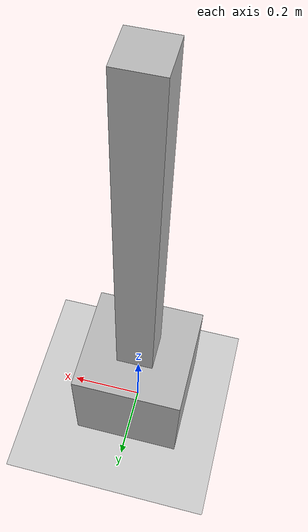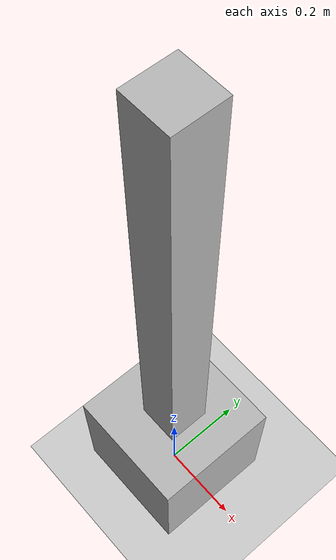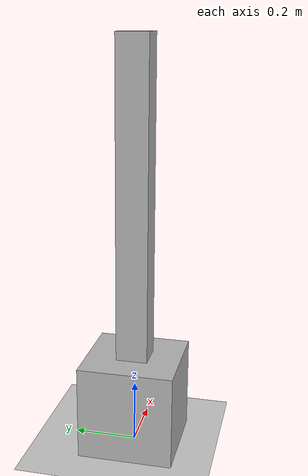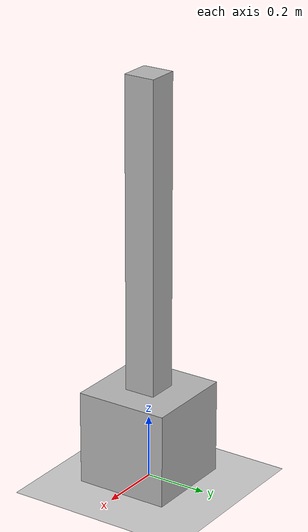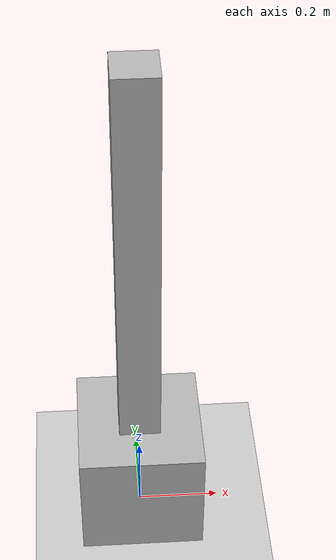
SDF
<?xml version="1.0" ?>
<gazebo version="1.2">
  <world name="default">
   <!-- A ground plane -->
   <include>
      <uri>model://ground_plane</uri>
    </include>

    <!-- A global light source -->
   <include>
      <uri>model://sun</uri>
    </include>

    <model name="inverted_pendulum">
      <static>false</static>
      <pose>0 0 0 0 0 0</pose>
      <link name="pendulum">
        <pose>0 0 0.8 0 0 0</pose>
        <inertial>
          <pose>0 0.0 0.0 0 0 0</pose>
          <mass>3.0</mass>
          <inertia>
            <ixx>0.2</ixx>
            <ixy>0.1</ixy>
            <ixz>0.1</ixz>
            <iyy>0.2</iyy>
            <iyz>0.1</iyz>
            <izz>0.2</izz>
          </inertia>
        </inertial>
        <collision name="pendulum_collision">
          <pose>0 0.0 0.0 0 0 0</pose>
          <geometry>
            <box>
              <size>0.1 0.1 1</size>
            </box>
          </geometry>
          <surface>
            <friction>
              <ode>
                <mu>.1</mu>
                <mu2>.1</mu2>
              </ode>
            </friction>
          </surface>
        </collision>
        <visual name="pendulum_visual">
          <pose>0 0.0 0.0 0 0 0</pose>
          <geometry>
            <box>
              <size>0.1 0.1 1</size>
            </box>
          </geometry>
        </visual>
      </link>
      <link name="cart">
        <pose>0 0 0.15 0 0 0</pose>
        <inertial>
          <pose>0 0.0 0.0 0 0 0</pose>
          <mass>50.0</mass>
          <inertia>
            <ixx>0.9</ixx>
            <ixy>0.9</ixy>
            <ixz>0.9</ixz>
            <iyy>0.9</iyy>
            <iyz>0.9</iyz>
            <izz>0.9</izz>
          </inertia>
        </inertial>
        <collision name="cart_collision">
          <pose>0 0.0 0 0 0 0</pose>
          <geometry>
            <box>
              <size>0.3 0.3 0.3</size>
            </box>
          </geometry>
          <surface>
            <friction>
              <ode>
                <mu>.1</mu>
                <mu2>.1</mu2>
              </ode>
            </friction>
          </surface>
        </collision>
        <visual name="cart_visual">
          <pose>0 0.0 0 0 0 0</pose>
          <geometry>
            <box>
              <size>0.3 0.3 .3</size>
            </box>
          </geometry>
        </visual>
      </link>
      <joint name="pendulum_joint" type="revolute">
        <parent>pendulum</parent>
        <child>cart</child>
        <pose>0 0.0 0.0 0 0 0</pose>
        <axis>
          <xyz>1 0 0</xyz>
        </axis>
      </joint>
      <plugin name="ros_based_plugin" filename="libros_model_plugin.so"/>
    </model>

  </world>
</gazebo>
